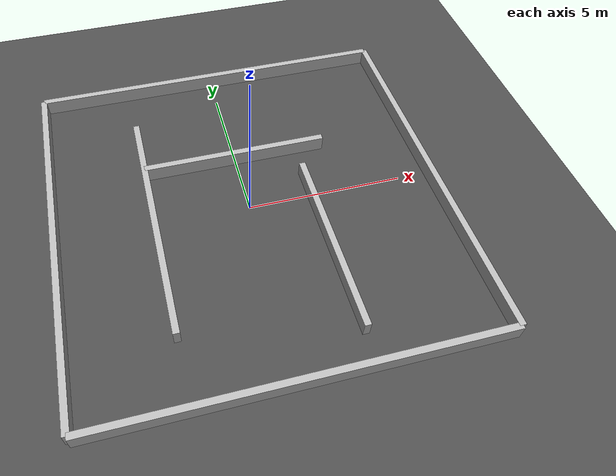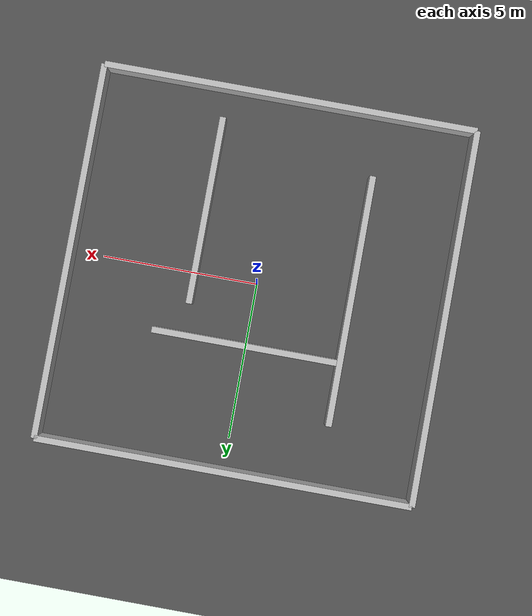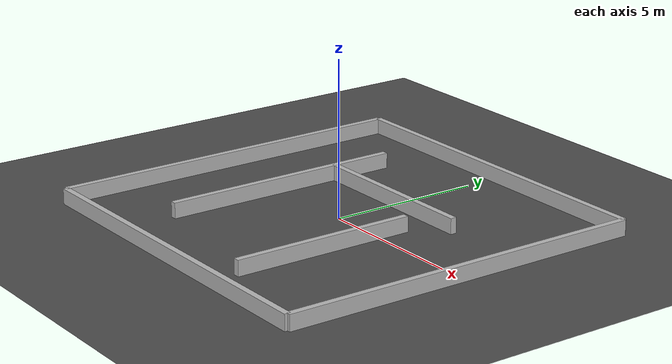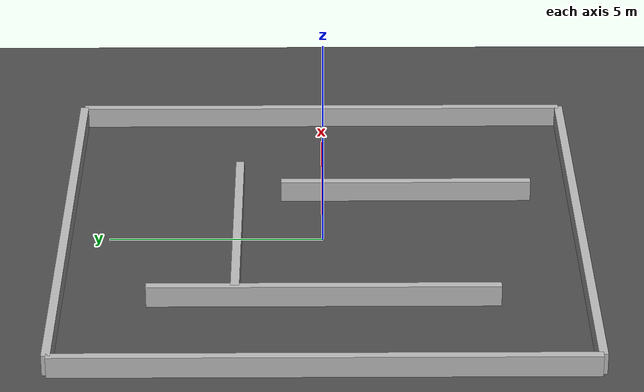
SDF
<?xml version="1.0"?>
<sdf version="1.7">
  <world name="default">
    <gravity>0 0 -9.81</gravity>

    <!-- Ground plane -->
    <model name="ground">
      <static>true</static>
      <link name="ground_link">
        <collision name="ground_col">
          <geometry><plane><normal>0 0 1</normal><size>50 50</size></plane></geometry>
          <surface><friction><ode><mu>1.0</mu><mu2>1.0</mu2></ode></friction></surface>
        </collision>
        <visual name="ground_vis">
          <geometry><plane><normal>0 0 1</normal><size>50 50</size></plane></geometry>
          <material><ambient>0.2 0.2 0.2 1</ambient><diffuse>0.3 0.3 0.3 1</diffuse></material>
        </visual>
      </link>
    </model>

    <!-- Helper macro-ish: we can’t do xacro, so just define box walls explicitly -->

    <!-- Outer boundary (a simple rectangle ~12x12m) -->
    <model name="wall_north"><static>true</static>
      <link name="link">
        <pose>0 6 0.25 0 0 0</pose>
        <collision name="col"><geometry><box><size>12 0.2 0.5</size></box></geometry></collision>
        <visual name="vis"><geometry><box><size>12 0.2 0.5</size></box></geometry></visual>
      </link>
    </model>

    <model name="wall_south"><static>true</static>
      <link name="link">
        <pose>0 -6 0.25 0 0 0</pose>
        <collision name="col"><geometry><box><size>12 0.2 0.5</size></box></geometry></collision>
        <visual name="vis"><geometry><box><size>12 0.2 0.5</size></box></geometry></visual>
      </link>
    </model>

    <model name="wall_east"><static>true</static>
      <link name="link">
        <pose>6 0 0.25 0 0 0</pose>
        <collision name="col"><geometry><box><size>0.2 12 0.5</size></box></geometry></collision>
        <visual name="vis"><geometry><box><size>0.2 12 0.5</size></box></geometry></visual>
      </link>
    </model>

    <model name="wall_west"><static>true</static>
      <link name="link">
        <pose>-6 0 0.25 0 0 0</pose>
        <collision name="col"><geometry><box><size>0.2 12 0.5</size></box></geometry></collision>
        <visual name="vis"><geometry><box><size>0.2 12 0.5</size></box></geometry></visual>
      </link>
    </model>

    <!-- A few internal corridors (adjust later to match your group’s exact maze) -->
    <model name="wall_a"><static>true</static>
      <link name="link">
        <pose>-3 0 0.25 0 0 0</pose>
        <collision name="col"><geometry><box><size>0.2 8 0.5</size></box></geometry></collision>
        <visual name="vis"><geometry><box><size>0.2 8 0.5</size></box></geometry></visual>
      </link>
    </model>

    <model name="wall_b"><static>true</static>
      <link name="link">
        <pose>0 2 0.25 0 0 0</pose>
        <collision name="col"><geometry><box><size>6 0.2 0.5</size></box></geometry></collision>
        <visual name="vis"><geometry><box><size>6 0.2 0.5</size></box></geometry></visual>
      </link>
    </model>

    <model name="wall_c"><static>true</static>
      <link name="link">
        <pose>2 -2 0.25 0 0 0</pose>
        <collision name="col"><geometry><box><size>0.2 6 0.5</size></box></geometry></collision>
        <visual name="vis"><geometry><box><size>0.2 6 0.5</size></box></geometry></visual>
      </link>
    </model>

    <!-- Default light -->
    <light type="directional" name="sun">
      <pose>0 0 10 0 0 0</pose>
      <diffuse>0.8 0.8 0.8 1</diffuse>
      <specular>0.2 0.2 0.2 1</specular>
      <direction>-0.5 0.5 -1</direction>
      <cast_shadows>true</cast_shadows>
    </light>
  </world>
</sdf>
